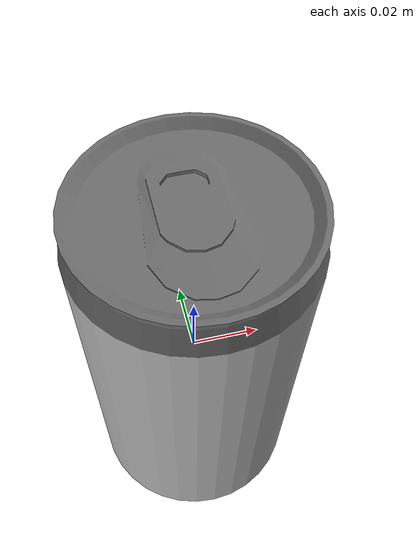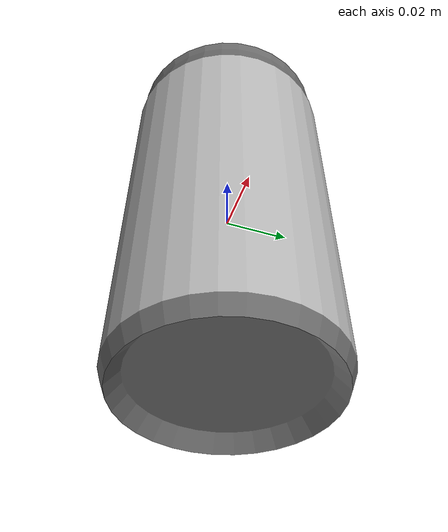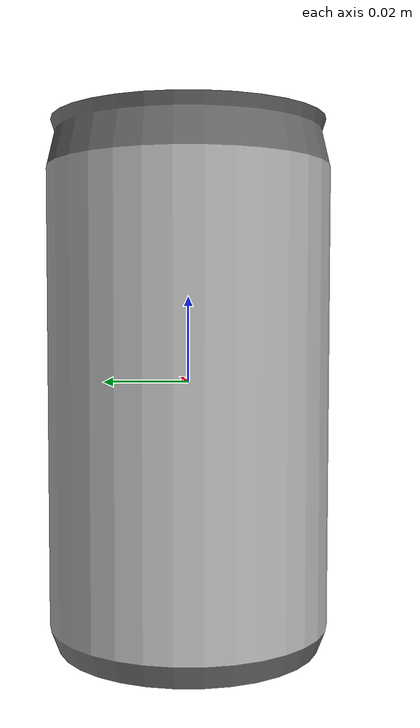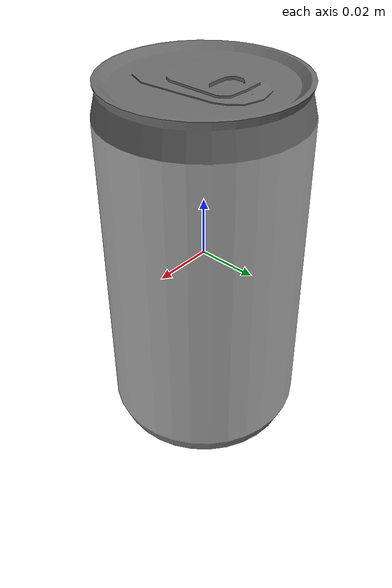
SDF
<?xml version="1.0" ?>
<sdf version="1.4">
    <model name='hsr_orange'>
      <link name='link'>
        <pose>0 0 0 0 0 0</pose>
        <inertial>
          <mass>0.35</mass>
          <inertia>
            <ixx>0.001481</ixx>
            <ixy>0</ixy>
            <ixz>0</ixz>
            <iyy>0.001481</iyy>
            <iyz>0</iyz>
            <izz>0.000168</izz>
          </inertia>
        </inertial>
        <visual name='hsr_orange'>
          <pose>0.0 0.0 0.0 0 0 0</pose>
          <geometry>
            <mesh>
              <uri>model://hsr_orange/meshes/hsr_orange.dae</uri>
            </mesh>
          </geometry>
          <material/>
        </visual>
        <collision name='hsr_orange'>
          <pose>0.0 0.0 0.0 0 0 0</pose>
          <geometry>
            <cylinder>
              <radius>0.033</radius>
              <length>0.1235</length>
            </cylinder>
          </geometry>
          <max_contacts>10</max_contacts>
          <surface>
            <bounce>
              <restitution_coefficient>0.2</restitution_coefficient>
              <threshold>0</threshold>
            </bounce>
            <friction>
              <ode/>
            </friction>
            <contact>
              <ode>
                <max_vel>10</max_vel>
              </ode>
            </contact>
          </surface>
        </collision>
        <velocity_decay>
          <linear>0</linear>
          <angular>0</angular>
        </velocity_decay>
        <self_collide>0</self_collide>
        <kinematic>0</kinematic>
        <gravity>1</gravity>
      </link>
      <static>0</static>
    </model>
</sdf>
